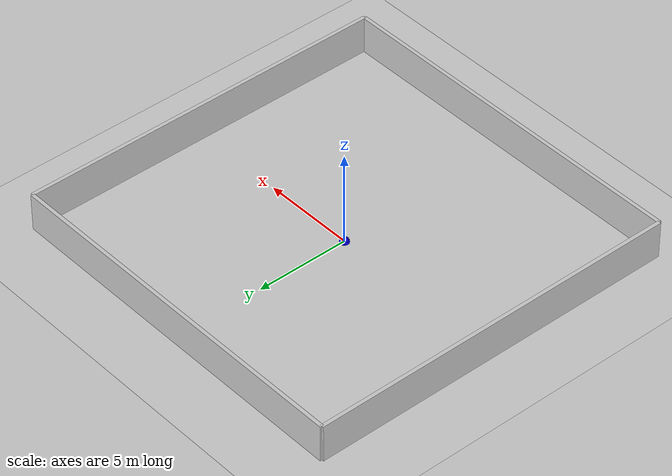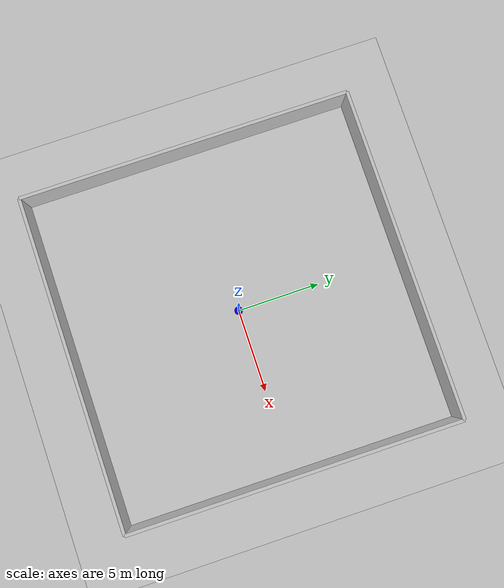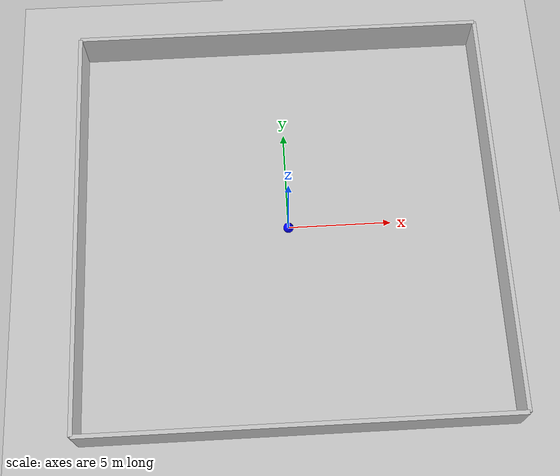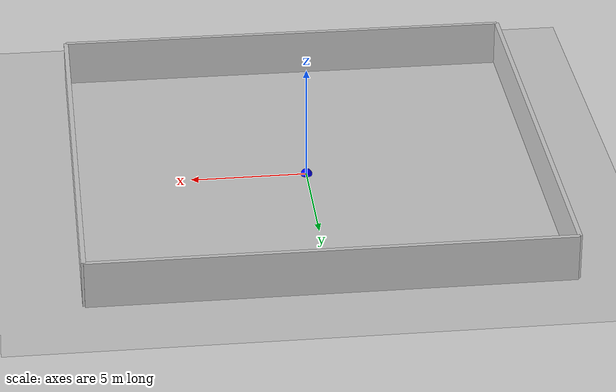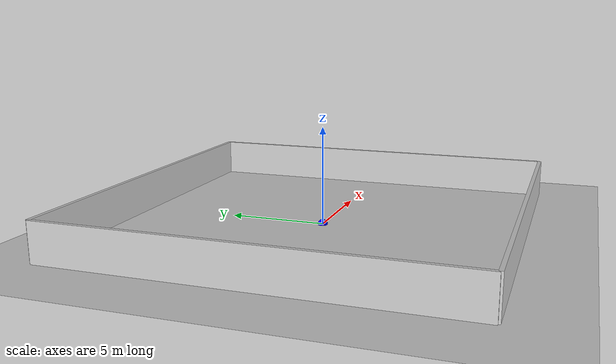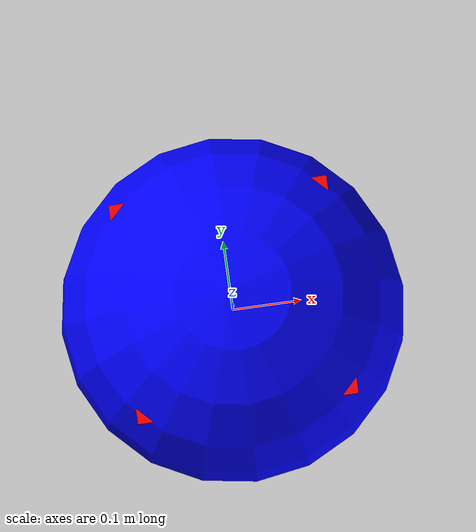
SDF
<?xml version="1.0" ?>
<sdf version="1.6">
  <world name="default">

    <!-- ─────────── ESCENA: iluminación & desactivar sombras ─────────── -->
    <scene>
      <ambient>0.4 0.4 0.4 1</ambient>
      <background>0.7 0.7 0.7 1</background>
      <shadows>false</shadows>
    </scene>

    <!-- ─────────── PLUGINS ROS–GAZEBO ─────────── -->
    <plugin name="gazebo_ros_api_plugin" filename="libgazebo_ros_api_plugin.so"/>
    <plugin name="gazebo_ros_factory"  filename="libgazebo_ros_factory.so"/>
    <plugin name="gazebo_ros_state"    filename="libgazebo_ros_state.so"/>

    <!-- ─────────── SOL y SUELO ─────────── -->
    <include><uri>model://sun</uri></include>
    <include><uri>model://ground_plane</uri></include>

    <!-- ─────────── PAREDES 20x20 ─────────── -->
    <!-- Izquierda -->
    <model name="wall_left">
      <static>true</static>
      <pose>-10 0 1 0 0 0</pose>
      <link name="link">
        <collision name="collision"><geometry><box><size>0.2 20 2</size></box></geometry></collision>
        <visual    name="visual"><geometry><box><size>0.2 20 2</size></box></geometry>
          <material><ambient>0.8 0.8 0.8 1</ambient></material>
        </visual>
      </link>
    </model>
    <!-- Derecha -->
    <model name="wall_right">
      <static>true</static>
      <pose>10 0 1 0 0 0</pose>
      <link name="link">
        <collision name="collision"><geometry><box><size>0.2 20 2</size></box></geometry></collision>
        <visual    name="visual"><geometry><box><size>0.2 20 2</size></box></geometry>
          <material><ambient>0.8 0.8 0.8 1</ambient></material>
        </visual>
      </link>
    </model>
    <!-- Inferior -->
    <model name="wall_bottom">
      <static>true</static>
      <pose>0 -10 1 0 0 0</pose>
      <link name="link">
        <collision name="collision"><geometry><box><size>20 0.2 2</size></box></geometry></collision>
        <visual    name="visual"><geometry><box><size>20 0.2 2</size></box></geometry>
          <material><ambient>0.8 0.8 0.8 1</ambient></material>
        </visual>
      </link>
    </model>
    <!-- Superior -->
    <model name="wall_top">
      <static>true</static>
      <pose>0 10 1 0 0 0</pose>
      <link name="link">
        <collision name="collision"><geometry><box><size>20 0.2 2</size></box></geometry></collision>
        <visual    name="visual"><geometry><box><size>20 0.2 2</size></box></geometry>
          <material><ambient>0.8 0.8 0.8 1</ambient></material>
        </visual>
      </link>
    </model>

    <!-- ─────────── FÍSICA ─────────── -->
    <physics name="default_physics" type="ode">
      <real_time_factor>1.0</real_time_factor>
      <real_time_update_rate>0</real_time_update_rate>
      <max_step_size>0.001</max_step_size>
      <use_real_time>true</use_real_time>
      <ode>
        <solver><type>quick</type><iters>50</iters><sor>1.3</sor></solver>
        <constraints><cfm>1e-5</cfm><erp>0.2</erp></constraints>
      </ode>
    </physics>

    <!-- ─────────── GUI ─────────── -->
    <gui fullscreen="0">
      <camera name="user_camera">
        <pose>0 -18 15 0.5 0.8 0</pose>
        <view_controller>orbit</view_controller>
        <projection_type>perspective</projection_type>
      </camera>
    </gui>

    <!-- ─────────── Obstáculos modelo pool ─────────── -->
    <model name="box_00">
      <static>false</static>
      <kinematic>true</kinematic>
      <link name="link">
        <collision name="col"><geometry><box><size>0.3 0.3 0.3</size></box></geometry></collision>
        <visual    name="vis"><geometry><box><size>0.3 0.3 0.3</size></box></geometry>
          <material><ambient>1 0 0 1</ambient></material>
        </visual>
      </link>
    </model>
    <!-- Repetir box_01…box_14 -->
    <model name="box_01">
      <static>false</static><kinematic>true</kinematic>
      <link name="link">
        <collision name="col"><geometry><box><size>0.3 0.3 0.3</size></box></geometry></collision>
        <visual    name="vis"><geometry><box><size>0.3 0.3 0.3</size></box></geometry>
          <material><ambient>0 1 0 1</ambient></material>
        </visual>
      </link>
    </model>

        <model name="box_02">
      <static>false</static><kinematic>true</kinematic>
      <link name="link">
        <collision name="col"><geometry><box><size>0.3 0.3 0.3</size></box></geometry></collision>
        <visual    name="vis"><geometry><box><size>0.3 0.3 0.3</size></box></geometry>
          <material><ambient>0 1 0 1</ambient></material>
        </visual>
      </link>
    </model>

        <model name="box_03">
      <static>false</static><kinematic>true</kinematic>
      <link name="link">
        <collision name="col"><geometry><box><size>0.3 0.3 0.3</size></box></geometry></collision>
        <visual    name="vis"><geometry><box><size>0.3 0.3 0.3</size></box></geometry>
          <material><ambient>0 1 0 1</ambient></material>
        </visual>
      </link>
    </model>

        <model name="box_04">
      <static>false</static><kinematic>true</kinematic>
      <link name="link">
        <collision name="col"><geometry><box><size>0.3 0.3 0.3</size></box></geometry></collision>
        <visual    name="vis"><geometry><box><size>0.3 0.3 0.3</size></box></geometry>
          <material><ambient>0 1 0 1</ambient></material>
        </visual>
      </link>
    </model>

        <model name="box_05">
      <static>false</static><kinematic>true</kinematic>
      <link name="link">
        <collision name="col"><geometry><box><size>0.3 0.3 0.3</size></box></geometry></collision>
        <visual    name="vis"><geometry><box><size>0.3 0.3 0.3</size></box></geometry>
          <material><ambient>0 1 0 1</ambient></material>
        </visual>
      </link>
    </model>

        <model name="box_06">
      <static>false</static><kinematic>true</kinematic>
      <link name="link">
        <collision name="col"><geometry><box><size>0.3 0.3 0.3</size></box></geometry></collision>
        <visual    name="vis"><geometry><box><size>0.3 0.3 0.3</size></box></geometry>
          <material><ambient>0 1 0 1</ambient></material>
        </visual>
      </link>
    </model>

        <model name="box_07">
      <static>false</static><kinematic>true</kinematic>
      <link name="link">
        <collision name="col"><geometry><box><size>0.3 0.3 0.3</size></box></geometry></collision>
        <visual    name="vis"><geometry><box><size>0.3 0.3 0.3</size></box></geometry>
          <material><ambient>0 1 0 1</ambient></material>
        </visual>
      </link>
    </model>

            <model name="box_08">
      <static>false</static><kinematic>true</kinematic>
      <link name="link">
        <collision name="col"><geometry><box><size>0.3 0.3 0.3</size></box></geometry></collision>
        <visual    name="vis"><geometry><box><size>0.3 0.3 0.3</size></box></geometry>
          <material><ambient>0 1 0 1</ambient></material>
        </visual>
      </link>
    </model>

            <model name="box_09">
      <static>false</static><kinematic>true</kinematic>
      <link name="link">
        <collision name="col"><geometry><box><size>0.3 0.3 0.3</size></box></geometry></collision>
        <visual    name="vis"><geometry><box><size>0.3 0.3 0.3</size></box></geometry>
          <material><ambient>0 1 0 1</ambient></material>
        </visual>
      </link>
    </model>

            <model name="box_10">
      <static>false</static><kinematic>true</kinematic>
      <link name="link">
        <collision name="col"><geometry><box><size>0.3 0.3 0.3</size></box></geometry></collision>
        <visual    name="vis"><geometry><box><size>0.3 0.3 0.3</size></box></geometry>
          <material><ambient>0 1 0 1</ambient></material>
        </visual>
      </link>
    </model>

    <model name="box_11">
  <static>false</static>
  <kinematic>true</kinematic>
  <link name="link">
    <collision name="col">
      <geometry>
        <sphere><radius>0.25</radius></sphere>
      </geometry>
    </collision>
    <visual name="vis">
      <geometry>
        <sphere><radius>0.25</radius></sphere>
      </geometry>
      <material><ambient>0 0 1 1</ambient></material>
    </visual>
  </link>
</model>

    <model name="box_12">
  <static>false</static>
  <kinematic>true</kinematic>
  <link name="link">
    <collision name="col">
      <geometry>
        <sphere><radius>0.25</radius></sphere>
      </geometry>
    </collision>
    <visual name="vis">
      <geometry>
        <sphere><radius>0.25</radius></sphere>
      </geometry>
      <material><ambient>0 0 1 1</ambient></material>
    </visual>
  </link>
</model>

    <model name="box_13">
  <static>false</static>
  <kinematic>true</kinematic>
  <link name="link">
    <collision name="col">
      <geometry>
        <sphere><radius>0.25</radius></sphere>
      </geometry>
    </collision>
    <visual name="vis">
      <geometry>
        <sphere><radius>0.25</radius></sphere>
      </geometry>
      <material><ambient>0 0 1 1</ambient></material>
    </visual>
  </link>
</model>

    <model name="box_14">
  <static>false</static>
  <kinematic>true</kinematic>
  <link name="link">
    <collision name="col">
      <geometry>
        <sphere><radius>0.25</radius></sphere>
      </geometry>
    </collision>
    <visual name="vis">
      <geometry>
        <sphere><radius>0.25</radius></sphere>
      </geometry>
      <material><ambient>0 0 1 1</ambient></material>
    </visual>
  </link>
</model>
    <!-- … hasta box_14 -->

  </world>
</sdf>
